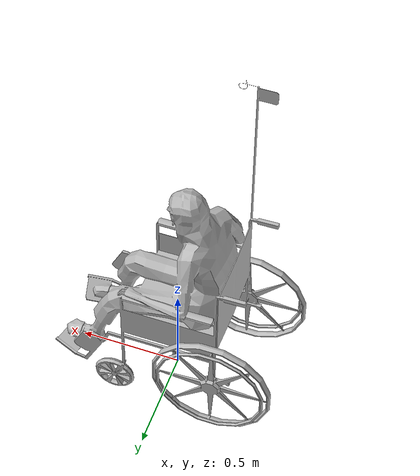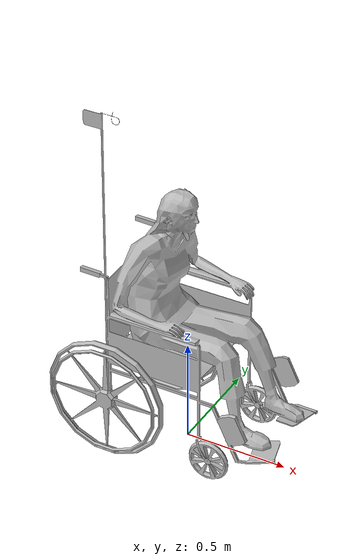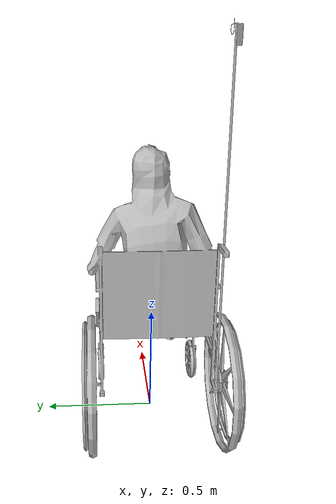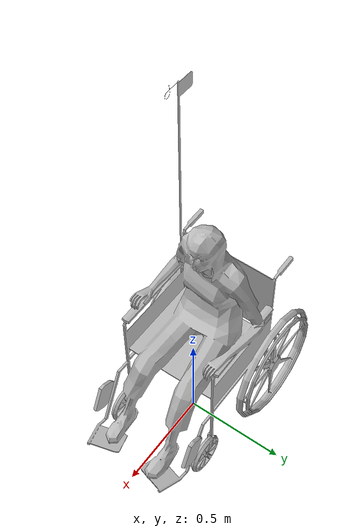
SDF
<?xml version='1.0' encoding='utf-8'?>
<sdf version="1.6">
  <model name="PatientWheelChair">
   <static>true</static>
    <link name="body">
      <pose>0 0 0 0 0 0</pose>

      <visual name="visual">
        <geometry>
          <mesh>
            <uri>model://PatientWheelChair/meshes/PatientWheelChair.obj</uri>
          </mesh>
        </geometry>
      </visual>

      <collision name="collision">
        <geometry>
          <mesh>
            <uri>model://PatientWheelChair/meshes/PatientWheelChair_Col.obj</uri>
          </mesh>
        </geometry>
      </collision>

    </link>
  </model>
</sdf>
